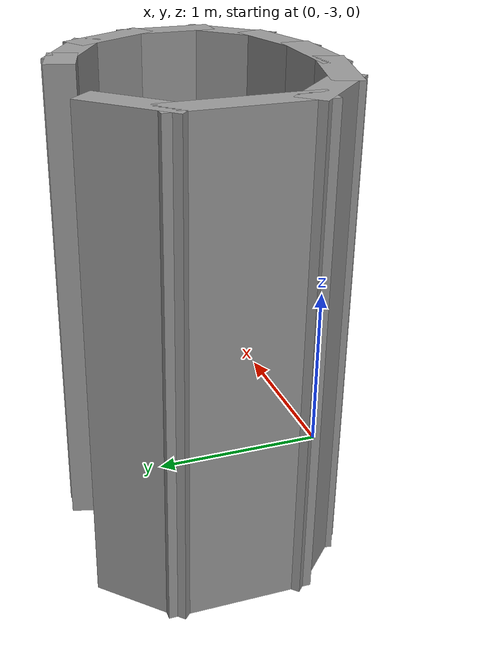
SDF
<?xml version='1.0'?>
<sdf version='1.7'>
  <model name='wall'>
    <pose>-0.376926 -1.39371 0 0 -0 0</pose>
    <link name='Wall_0'>
      <collision name='Wall_0_Collision'>
        <geometry>
          <box>
            <size>0.5 0.15 2.5</size>
          </box>
        </geometry>
        <pose>0 0 1.25 0 -0 0</pose>
      </collision>
      <visual name='Wall_0_Visual'>
        <pose>0 0 1.25 0 -0 0</pose>
        <geometry>
          <box>
            <size>0.5 0.15 2.5</size>
          </box>
        </geometry>
        <material>
          <script>
            <uri>file://media/materials/scripts/gazebo.material</uri>
            <name>Gazebo/Grey</name>
          </script>
          <ambient>1 1 1 1</ambient>
        </material>
        <meta>
          <layer>0</layer>
        </meta>
      </visual>
      <pose>-0.636818 -0.240035 0 0 -0 -2.35619</pose>
    </link>
    <link name='Wall_1'>
      <collision name='Wall_1_Collision'>
        <geometry>
          <box>
            <size>0.75 0.15 2.5</size>
          </box>
        </geometry>
        <pose>0 0 1.25 0 -0 0</pose>
      </collision>
      <visual name='Wall_1_Visual'>
        <pose>0 0 1.25 0 -0 0</pose>
        <geometry>
          <box>
            <size>0.75 0.15 2.5</size>
          </box>
        </geometry>
        <material>
          <script>
            <uri>file://media/materials/scripts/gazebo.material</uri>
            <name>Gazebo/Grey</name>
          </script>
          <ambient>1 1 1 1</ambient>
        </material>
        <meta>
          <layer>0</layer>
        </meta>
      </visual>
      <pose>-0.760561 -0.663779 0 0 -0 -1.5708</pose>
    </link>
    <link name='Wall_10'>
      <collision name='Wall_10_Collision'>
        <geometry>
          <box>
            <size>0.25 0.15 2.5</size>
          </box>
        </geometry>
        <pose>0 0 1.25 0 -0 0</pose>
      </collision>
      <visual name='Wall_10_Visual'>
        <pose>0 0 1.25 0 -0 0</pose>
        <geometry>
          <box>
            <size>0.25 0.15 2.5</size>
          </box>
        </geometry>
        <material>
          <script>
            <uri>file://media/materials/scripts/gazebo.material</uri>
            <name>Gazebo/Grey</name>
          </script>
          <ambient>1 1 1 1</ambient>
        </material>
        <meta>
          <layer>0</layer>
        </meta>
      </visual>
      <pose>0.234156 -0.122729 0 0 -0 2.87979</pose>
    </link>
    <link name='Wall_2'>
      <collision name='Wall_2_Collision'>
        <geometry>
          <box>
            <size>0.5 0.15 2.5</size>
          </box>
        </geometry>
        <pose>0 0 1.25 0 -0 0</pose>
      </collision>
      <visual name='Wall_2_Visual'>
        <pose>0 0 1.25 0 -0 0</pose>
        <geometry>
          <box>
            <size>0.5 0.15 2.5</size>
          </box>
        </geometry>
        <material>
          <script>
            <uri>file://media/materials/scripts/gazebo.material</uri>
            <name>Gazebo/Grey</name>
          </script>
          <ambient>1 1 1 1</ambient>
        </material>
        <meta>
          <layer>0</layer>
        </meta>
      </visual>
      <pose>-0.636818 -1.08752 0 0 -0 -0.785398</pose>
    </link>
    <link name='Wall_3'>
      <collision name='Wall_3_Collision'>
        <geometry>
          <box>
            <size>0.5 0.15 2.5</size>
          </box>
        </geometry>
        <pose>0 0 1.25 0 -0 0</pose>
      </collision>
      <visual name='Wall_3_Visual'>
        <pose>0 0 1.25 0 -0 0</pose>
        <geometry>
          <box>
            <size>0.5 0.15 2.5</size>
          </box>
        </geometry>
        <material>
          <script>
            <uri>file://media/materials/scripts/gazebo.material</uri>
            <name>Gazebo/Grey</name>
          </script>
          <ambient>1 1 1 1</ambient>
        </material>
        <meta>
          <layer>0</layer>
        </meta>
      </visual>
      <pose>-0.344037 -1.25656 0 0 -0 -0.261799</pose>
    </link>
    <link name='Wall_4'>
      <collision name='Wall_4_Collision'>
        <geometry>
          <box>
            <size>0.5 0.15 2.5</size>
          </box>
        </geometry>
        <pose>0 0 1.25 0 -0 0</pose>
      </collision>
      <visual name='Wall_4_Visual'>
        <pose>0 0 1.25 0 -0 0</pose>
        <geometry>
          <box>
            <size>0.5 0.15 2.5</size>
          </box>
        </geometry>
        <material>
          <script>
            <uri>file://media/materials/scripts/gazebo.material</uri>
            <name>Gazebo/Grey</name>
          </script>
          <ambient>1 1 1 1</ambient>
        </material>
        <meta>
          <layer>0</layer>
        </meta>
      </visual>
      <pose>-0 -1.30185 0 0 -0 0</pose>
    </link>
    <link name='Wall_5'>
      <collision name='Wall_5_Collision'>
        <geometry>
          <box>
            <size>0.5 0.15 2.5</size>
          </box>
        </geometry>
        <pose>0 0 1.25 0 -0 0</pose>
      </collision>
      <visual name='Wall_5_Visual'>
        <pose>0 0 1.25 0 -0 0</pose>
        <geometry>
          <box>
            <size>0.5 0.15 2.5</size>
          </box>
        </geometry>
        <material>
          <script>
            <uri>file://media/materials/scripts/gazebo.material</uri>
            <name>Gazebo/Grey</name>
          </script>
          <ambient>1 1 1 1</ambient>
        </material>
        <meta>
          <layer>0</layer>
        </meta>
      </visual>
      <pose>0.344037 -1.25656 0 0 -0 0.261799</pose>
    </link>
    <link name='Wall_6'>
      <collision name='Wall_6_Collision'>
        <geometry>
          <box>
            <size>0.5 0.15 2.5</size>
          </box>
        </geometry>
        <pose>0 0 1.25 0 -0 0</pose>
      </collision>
      <visual name='Wall_6_Visual'>
        <pose>0 0 1.25 0 -0 0</pose>
        <geometry>
          <box>
            <size>0.5 0.15 2.5</size>
          </box>
        </geometry>
        <material>
          <script>
            <uri>file://media/materials/scripts/gazebo.material</uri>
            <name>Gazebo/Grey</name>
          </script>
          <ambient>1 1 1 1</ambient>
        </material>
        <meta>
          <layer>0</layer>
        </meta>
      </visual>
      <pose>0.636818 -1.08752 0 0 -0 0.785398</pose>
    </link>
    <link name='Wall_7'>
      <collision name='Wall_7_Collision'>
        <geometry>
          <box>
            <size>0.5 0.15 2.5</size>
          </box>
        </geometry>
        <pose>0 0 1.25 0 -0 0</pose>
      </collision>
      <visual name='Wall_7_Visual'>
        <pose>0 0 1.25 0 -0 0</pose>
        <geometry>
          <box>
            <size>0.5 0.15 2.5</size>
          </box>
        </geometry>
        <material>
          <script>
            <uri>file://media/materials/scripts/gazebo.material</uri>
            <name>Gazebo/Grey</name>
          </script>
          <ambient>1 1 1 1</ambient>
        </material>
        <meta>
          <layer>0</layer>
        </meta>
      </visual>
      <pose>0.760561 -0.788779 0 0 -0 1.5708</pose>
    </link>
    <link name='Wall_8'>
      <collision name='Wall_8_Collision'>
        <geometry>
          <box>
            <size>0.5 0.15 2.5</size>
          </box>
        </geometry>
        <pose>0 0 1.25 0 -0 0</pose>
      </collision>
      <visual name='Wall_8_Visual'>
        <pose>0 0 1.25 0 -0 0</pose>
        <geometry>
          <box>
            <size>0.5 0.15 2.5</size>
          </box>
        </geometry>
        <material>
          <script>
            <uri>file://media/materials/scripts/gazebo.material</uri>
            <name>Gazebo/Grey</name>
          </script>
          <ambient>1 1 1 1</ambient>
        </material>
        <meta>
          <layer>0</layer>
        </meta>
      </visual>
      <pose>0.673061 -0.462224 0 0 -0 2.0944</pose>
    </link>
    <link name='Wall_9'>
      <collision name='Wall_9_Collision'>
        <geometry>
          <box>
            <size>0.5 0.15 2.5</size>
          </box>
        </geometry>
        <pose>0 0 1.25 0 -0 0</pose>
      </collision>
      <visual name='Wall_9_Visual'>
        <pose>0 0 1.25 0 -0 0</pose>
        <geometry>
          <box>
            <size>0.5 0.15 2.5</size>
          </box>
        </geometry>
        <material>
          <script>
            <uri>file://media/materials/scripts/gazebo.material</uri>
            <name>Gazebo/Grey</name>
          </script>
          <ambient>1 1 1 1</ambient>
        </material>
        <meta>
          <layer>0</layer>
        </meta>
      </visual>
      <pose>0.434007 -0.22317 0 0 -0 2.61799</pose>
    </link>
    <static>1</static>
  </model>
</sdf>
